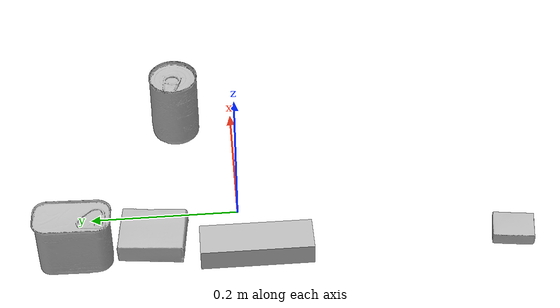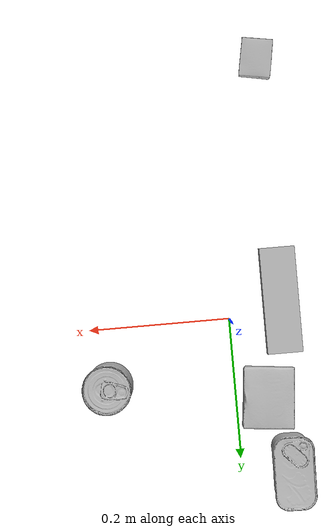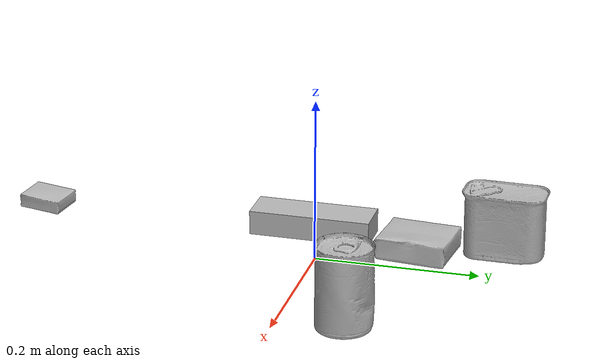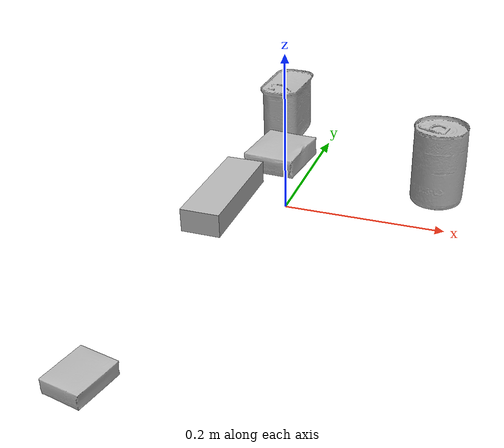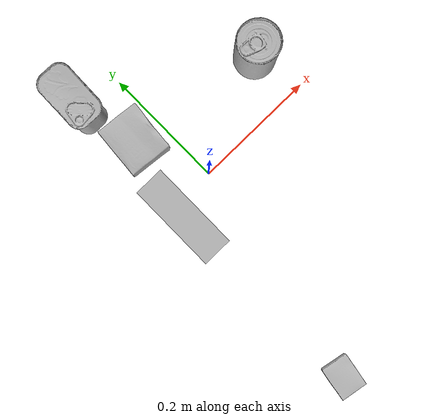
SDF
<sdf version="1.4">
  <world name="default">
    <light name="light1" type="point">
      <pose>0 0 1 0 0 0</pose>
      <diffuse>3 3 3 1</diffuse>
      <specular>3 3 3 1</specular>
    </light>
    <light name="light2" type="point">
      <pose>0 0.5 2 0 0 0</pose>
      <diffuse>1 1 1 1</diffuse>
      <specular>1 1 1 1</specular>
    </light>
    <light name="light3" type="point">
      <pose>0 0.5 2 0 0 0</pose>
      <diffuse>3 3 3 1</diffuse>
      <specular>3 3 3 1</specular>
    </light>
    <scene>
      <ambient>0.7 0.7 0.7</ambient>
    </scene>
    <model name="box1">
      <link name="link_box1">
        <collision name="default">
          <geometry>
            <mesh>
              <uri>model://pudding_box/collision_meshes/collision.obj</uri>
              <scale>0.5 0.5 0.5</scale>
            </mesh>
          </geometry>
          <surface>
            <friction>
              <ode>
                <mu>0.5</mu>
                <mu2>0.5</mu2>
              </ode>
            </friction>
          <contact>
        <ode>
            <max_vel>0</max_vel>
            <min_depth>0.0001</min_depth>
            <kp>1e8</kp>
        </ode>
    </contact></surface>
        </collision>
        <visual name="default">
          <geometry>
            <mesh>
              <uri>model://pudding_box/visual_meshes/visual.dae</uri>
              <scale>0.5 0.5 0.5</scale>
            </mesh>
          </geometry>
        </visual>
        <inertial>
          <mass>0.040720973163843155</mass>
          <pose>0.00024474109522998333 0.0004033942532259971 -0.0002594413817860186 0.005213101818388509 -0.006603799159636292 0.020079815843731863</pose>
          <inertia>
            <ixx>1.1508242e-05</ixx>
            <iyy>7.742825e-06</iyy>
            <izz>1.6994923e-05</izz>
            <ixy>0</ixy>
            <ixz>0</ixz>
            <iyz>0</iyz>
          </inertia>
        </inertial>
      </link>
      <pose>-0.07035288959741592 -0.36671343445777893 0.009862901642918587 0.022348542420666525 -0.011391726914761658 2.965782319423066</pose>
    </model>
    <model name="box2">
      <link name="link_box2">
        <collision name="default">
          <geometry>
            <mesh>
              <uri>model://jenga/collision_meshes/collision.obj</uri>
              <scale>1.0 1.0 1.0</scale>
            </mesh>
          </geometry>
          <surface>
            <friction>
              <ode>
                <mu>0.5</mu>
                <mu2>0.5</mu2>
              </ode>
            </friction>
          <contact>
        <ode>
            <max_vel>0</max_vel>
            <min_depth>0.0001</min_depth>
            <kp>1e8</kp>
        </ode>
    </contact></surface>
        </collision>
        <visual name="default">
          <geometry>
            <mesh>
              <uri>model://jenga/visual_meshes/visual.dae</uri>
              <scale>1.0 1.0 1.0</scale>
            </mesh>
          </geometry>
        </visual>
        <inertial>
          <mass>0.2260044664144516</mass>
          <pose>-2.502855807051674e-07 -0.00010250010382151231 -4.0923401684267446e-05 0.0 -7.34215461761844e-07 0.0</pose>
          <inertia>
            <ixx>6.254092e-05</ixx>
            <iyy>0.00042377558</iyy>
            <izz>0.00045241645</izz>
            <ixy>0</ixy>
            <ixz>0</ixz>
            <iyz>0</iyz>
          </inertia>
        </inertial>
      </link>
      <pose>-0.07517904788255692 -0.020992649719119072 0.01499999687075615 4.189358440686295e-09 -9.24929640801849e-09 1.5686110761875185</pose>
    </model>
    <model name="box3">
      <link name="link_box3">
        <collision name="default">
          <geometry>
            <mesh>
              <uri>model://gelatin_box/collision_meshes/collision.obj</uri>
              <scale>1.0 1.0 1.0</scale>
            </mesh>
          </geometry>
          <surface>
            <friction>
              <ode>
                <mu>0.5</mu>
                <mu2>0.5</mu2>
              </ode>
            </friction>
          <contact>
        <ode>
            <max_vel>0</max_vel>
            <min_depth>0.0001</min_depth>
            <kp>1e8</kp>
        </ode>
    </contact></surface>
        </collision>
        <visual name="default">
          <geometry>
            <mesh>
              <uri>model://gelatin_box/visual_meshes/visual.dae</uri>
              <scale>1.0 1.0 1.0</scale>
            </mesh>
          </geometry>
        </visual>
        <inertial>
          <mass>0.21249663829803467</mass>
          <pose>0.000431961816502735 0.00011156871914863586 -0.0003640321083366871 -0.0010503720865678746 -0.004755816824885886 0.016440563196489677</pose>
          <inertia>
            <ixx>0.00015000527</ixx>
            <iyy>0.000107147986</iyy>
            <izz>0.00022834145</izz>
            <ixy>0</ixy>
            <ixz>0</ixz>
            <iyz>0</iyz>
          </inertia>
        </inertial>
      </link>
      <pose>-0.04651486873626709 0.11576877534389496 0.01516831386834383 0.005597411012241335 -0.007304488016106741 -0.1056475192131815</pose>
    </model>
    <model name="can1">
      <link name="link_can1">
        <collision name="default">
          <geometry>
            <mesh>
              <uri>model://tomato_soup_can/collision_meshes/collision.obj</uri>
              <scale>1.0 1.0 1.0</scale>
            </mesh>
          </geometry>
          <surface>
            <friction>
              <ode>
                <mu>0.5</mu>
                <mu2>0.5</mu2>
              </ode>
            </friction>
          <contact>
        <ode>
            <max_vel>0</max_vel>
            <min_depth>0.0001</min_depth>
            <kp>1e8</kp>
        </ode>
    </contact></surface>
        </collision>
        <visual name="default">
          <geometry>
            <mesh>
              <uri>model://tomato_soup_can/visual_meshes/visual.dae</uri>
              <scale>1.0 1.0 1.0</scale>
            </mesh>
          </geometry>
        </visual>
        <inertial>
          <mass>0.23179346323013306</mass>
          <pose>0.00012652273289859295 0.00010805525380419567 -0.0017973976209759712 0.00702006934742656 0.00042299045868732465 -0.009902874376192201</pose>
          <inertia>
            <ixx>0.0002541419</ixx>
            <iyy>0.00025267305</iyy>
            <izz>0.00013171937</izz>
            <ixy>0</ixy>
            <ixz>0</ixz>
            <iyz>0</iyz>
          </inertia>
        </inertial>
      </link>
      <pose>0.17659471929073334 0.07949019223451614 0.05127400532364845 -4.5444232369000336e-07 -8.162730788673296e-07 -2.0654325792675645</pose>
    </model>
    <model name="can2">
      <link name="link_can2">
        <collision name="default">
          <geometry>
            <mesh>
              <uri>model://potted_meat_can/collision_meshes/collision.obj</uri>
              <scale>1.0 1.0 1.0</scale>
            </mesh>
          </geometry>
          <surface>
            <friction>
              <ode>
                <mu>0.5</mu>
                <mu2>0.5</mu2>
              </ode>
            </friction>
          <contact>
        <ode>
            <max_vel>0</max_vel>
            <min_depth>0.0001</min_depth>
            <kp>1e8</kp>
        </ode>
    </contact></surface>
        </collision>
        <visual name="default">
          <geometry>
            <mesh>
              <uri>model://potted_meat_can/visual_meshes/visual.dae</uri>
              <scale>1.0 1.0 1.0</scale>
            </mesh>
          </geometry>
        </visual>
        <inertial>
          <mass>0.3195023536682129</mass>
          <pose>0.00022888148669153452 -5.98910846747458e-05 -0.0006367437308654189 -0.028093352727545092 -0.0072326048209280834 0.015406269022640915</pose>
          <inertia>
            <ixx>0.00041100648</ixx>
            <iyy>0.0002497176</iyy>
            <izz>0.00029892896</izz>
            <ixy>0</ixy>
            <ixz>0</ixz>
            <iyz>0</iyz>
          </inertia>
        </inertial>
      </link>
      <pose>-0.07025672495365143 0.21683074533939362 0.04212801158428192 -6.749474709643213e-09 -4.957890486149681e-07 -0.035061640738619455</pose>
    </model>
  <physics type="ode">
      <max_contacts>50</max_contacts>
      <ode>
        <solver>
          <type>quick</type>
          <iters>75</iters>
        </solver>
        <constraints>
          <contact_max_correcting_vel>0</contact_max_correcting_vel>
          <contact_surface_layer>0</contact_surface_layer>
        </constraints>
      </ode>
    </physics></world>
</sdf>
